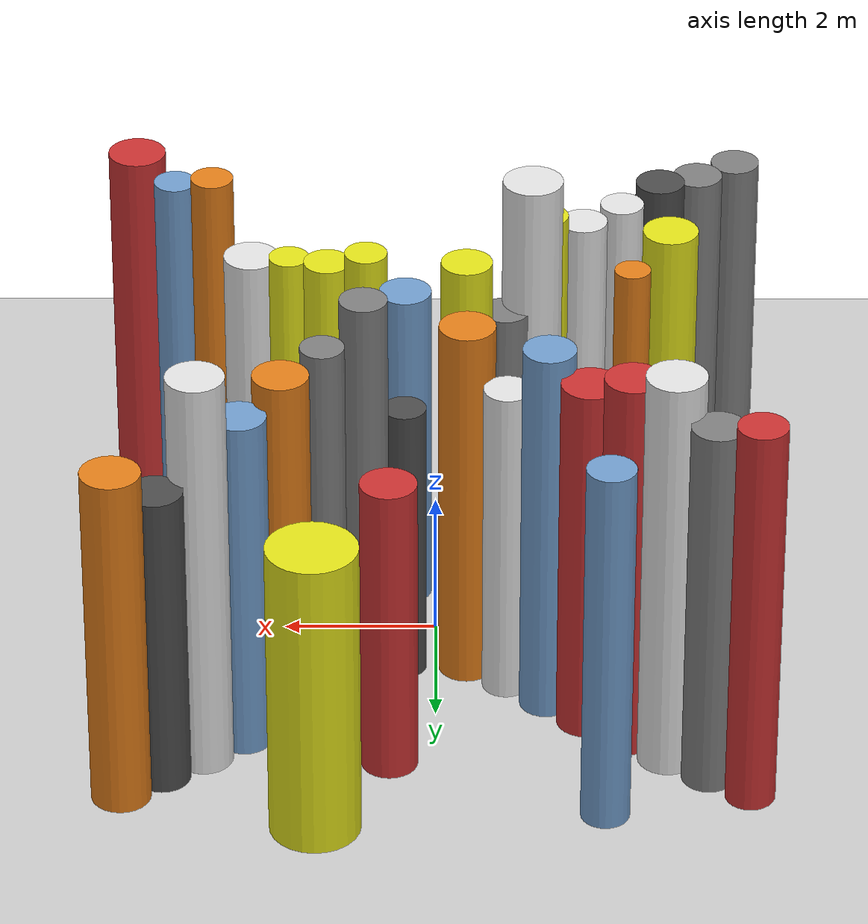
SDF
<?xml version='1.0'?>
<sdf version='1.6'>
  <world name='routeA_rl_v1__dense_recovery__rl_test__bottleneck_corridor__000111'>
    <!-- Sun light -->
    <light name='sun' type='directional'>
      <cast_shadows>1</cast_shadows>
      <pose>0 0 10 0 0 0</pose>
      <diffuse>0.8 0.8 0.8 1</diffuse>
      <specular>0.2 0.2 0.2 1</specular>
      <attenuation>
        <range>1000</range>
        <constant>0.9</constant>
        <linear>0.01</linear>
        <quadratic>0.001</quadratic>
      </attenuation>
      <direction>-0.5 0.1 -0.9</direction>
    </light>

    <!-- Ground plane -->
    <model name='ground_plane'>
      <static>1</static>
      <link name='link'>
        <collision name='collision'>
          <geometry>
            <plane>
              <normal>0 0 1</normal>
              <size>100 100</size>
            </plane>
          </geometry>
          <surface>
            <contact>
              <collide_bitmask>65535</collide_bitmask>
              <ode/>
            </contact>
            <friction>
              <ode>
                <mu>100</mu>
                <mu2>50</mu2>
              </ode>
              <torsional><ode/></torsional>
            </friction>
            <bounce/>
          </surface>
          <max_contacts>10</max_contacts>
        </collision>
        <visual name='visual'>
          <cast_shadows>0</cast_shadows>
          <geometry>
            <plane>
              <normal>0 0 1</normal>
              <size>100 100</size>
            </plane>
          </geometry>
          <material>
            <script>
              <uri>file://media/materials/scripts/gazebo.material</uri>
              <n>Gazebo/Grey</n>
            </script>
          </material>
        </visual>
      </link>
    </model>

    <!-- Environment -->
    <magnetic_field>6e-06 2.3e-05 -4.2e-05</magnetic_field>
    <atmosphere type='adiabatic'/>
    <physics name='default_physics' default='0' type='ode'>
      <gravity>0 0 -9.8</gravity>
      <max_step_size>0.004</max_step_size>
      <real_time_factor>1</real_time_factor>
      <real_time_update_rate>250</real_time_update_rate>
    </physics>
    <scene>
      <ambient>0.4 0.4 0.4 1</ambient>
      <background>0.7 0.7 0.7 1</background>
      <shadows>1</shadows>
    </scene>
    <wind/>
    <spherical_coordinates>
      <surface_model>EARTH_WGS84</surface_model>
      <latitude_deg>0</latitude_deg>
      <longitude_deg>0</longitude_deg>
      <elevation>0</elevation>
      <heading_deg>0</heading_deg>
    </spherical_coordinates>

    <!-- ============ OBSTACLES (40) ============ -->
    <model name='funnel_l_0'>
      <static>1</static>
      <link name='link'>
        <visual name='visual'>
          <geometry>
            <cylinder>
              <radius>0.3208</radius>
              <length>4.9427</length>
            </cylinder>
          </geometry>
          <material>
            <script>
              <n>Gazebo/Grey</n>
              <uri>file://media/materials/scripts/gazebo.material</uri>
            </script>
            <ambient>0.5 0.5 0.5 1</ambient>
          </material>
        </visual>
        <collision name='collision'>
          <geometry>
            <cylinder>
              <radius>0.3208</radius>
              <length>4.9427</length>
            </cylinder>
          </geometry>
          <max_contacts>10</max_contacts>
          <surface>
            <contact><ode/></contact>
            <bounce/>
            <friction>
              <ode><mu>1</mu><mu2>1</mu2></ode>
              <torsional><ode/></torsional>
            </friction>
          </surface>
        </collision>
      </link>
      <pose>-4.0000 -3.8000 2.4713 0 0 0.0000</pose>
    </model>

    <model name='funnel_r_0'>
      <static>1</static>
      <link name='link'>
        <visual name='visual'>
          <geometry>
            <cylinder>
              <radius>0.3223</radius>
              <length>5.5609</length>
            </cylinder>
          </geometry>
          <material>
            <script>
              <n>Gazebo/Red</n>
              <uri>file://media/materials/scripts/gazebo.material</uri>
            </script>
            <ambient>0.8 0.2 0.2 1</ambient>
          </material>
        </visual>
        <collision name='collision'>
          <geometry>
            <cylinder>
              <radius>0.3223</radius>
              <length>5.5609</length>
            </cylinder>
          </geometry>
          <max_contacts>10</max_contacts>
          <surface>
            <contact><ode/></contact>
            <bounce/>
            <friction>
              <ode><mu>1</mu><mu2>1</mu2></ode>
              <torsional><ode/></torsional>
            </friction>
          </surface>
        </collision>
      </link>
      <pose>-4.0000 3.8000 2.7805 0 0 0.0000</pose>
    </model>

    <model name='funnel_l_1'>
      <static>1</static>
      <link name='link'>
        <visual name='visual'>
          <geometry>
            <cylinder>
              <radius>0.3257</radius>
              <length>4.9757</length>
            </cylinder>
          </geometry>
          <material>
            <script>
              <n>Gazebo/Grey</n>
              <uri>file://media/materials/scripts/gazebo.material</uri>
            </script>
            <ambient>0.5 0.5 0.5 1</ambient>
          </material>
        </visual>
        <collision name='collision'>
          <geometry>
            <cylinder>
              <radius>0.3257</radius>
              <length>4.9757</length>
            </cylinder>
          </geometry>
          <max_contacts>10</max_contacts>
          <surface>
            <contact><ode/></contact>
            <bounce/>
            <friction>
              <ode><mu>1</mu><mu2>1</mu2></ode>
              <torsional><ode/></torsional>
            </friction>
          </surface>
        </collision>
      </link>
      <pose>-3.4857 -3.3857 2.4878 0 0 0.0000</pose>
    </model>

    <model name='funnel_r_1'>
      <static>1</static>
      <link name='link'>
        <visual name='visual'>
          <geometry>
            <cylinder>
              <radius>0.3495</radius>
              <length>5.2922</length>
            </cylinder>
          </geometry>
          <material>
            <script>
              <n>Gazebo/Grey</n>
              <uri>file://media/materials/scripts/gazebo.material</uri>
            </script>
            <ambient>0.5 0.5 0.5 1</ambient>
          </material>
        </visual>
        <collision name='collision'>
          <geometry>
            <cylinder>
              <radius>0.3495</radius>
              <length>5.2922</length>
            </cylinder>
          </geometry>
          <max_contacts>10</max_contacts>
          <surface>
            <contact><ode/></contact>
            <bounce/>
            <friction>
              <ode><mu>1</mu><mu2>1</mu2></ode>
              <torsional><ode/></torsional>
            </friction>
          </surface>
        </collision>
      </link>
      <pose>-3.4857 3.3857 2.6461 0 0 0.0000</pose>
    </model>

    <model name='funnel_l_2'>
      <static>1</static>
      <link name='link'>
        <visual name='visual'>
          <geometry>
            <cylinder>
              <radius>0.3228</radius>
              <length>5.1113</length>
            </cylinder>
          </geometry>
          <material>
            <script>
              <n>Gazebo/DarkGrey</n>
              <uri>file://media/materials/scripts/gazebo.material</uri>
            </script>
            <ambient>0.3 0.3 0.3 1</ambient>
          </material>
        </visual>
        <collision name='collision'>
          <geometry>
            <cylinder>
              <radius>0.3228</radius>
              <length>5.1113</length>
            </cylinder>
          </geometry>
          <max_contacts>10</max_contacts>
          <surface>
            <contact><ode/></contact>
            <bounce/>
            <friction>
              <ode><mu>1</mu><mu2>1</mu2></ode>
              <torsional><ode/></torsional>
            </friction>
          </surface>
        </collision>
      </link>
      <pose>-2.9714 -2.9714 2.5556 0 0 0.0000</pose>
    </model>

    <model name='funnel_r_2'>
      <static>1</static>
      <link name='link'>
        <visual name='visual'>
          <geometry>
            <cylinder>
              <radius>0.3881</radius>
              <length>5.7651</length>
            </cylinder>
          </geometry>
          <material>
            <script>
              <n>Gazebo/White</n>
              <uri>file://media/materials/scripts/gazebo.material</uri>
            </script>
            <ambient>0.9 0.9 0.9 1</ambient>
          </material>
        </visual>
        <collision name='collision'>
          <geometry>
            <cylinder>
              <radius>0.3881</radius>
              <length>5.7651</length>
            </cylinder>
          </geometry>
          <max_contacts>10</max_contacts>
          <surface>
            <contact><ode/></contact>
            <bounce/>
            <friction>
              <ode><mu>1</mu><mu2>1</mu2></ode>
              <torsional><ode/></torsional>
            </friction>
          </surface>
        </collision>
      </link>
      <pose>-2.9714 2.9714 2.8826 0 0 0.0000</pose>
    </model>

    <model name='funnel_l_3'>
      <static>1</static>
      <link name='link'>
        <visual name='visual'>
          <geometry>
            <cylinder>
              <radius>0.2877</radius>
              <length>5.0155</length>
            </cylinder>
          </geometry>
          <material>
            <script>
              <n>Gazebo/White</n>
              <uri>file://media/materials/scripts/gazebo.material</uri>
            </script>
            <ambient>0.9 0.9 0.9 1</ambient>
          </material>
        </visual>
        <collision name='collision'>
          <geometry>
            <cylinder>
              <radius>0.2877</radius>
              <length>5.0155</length>
            </cylinder>
          </geometry>
          <max_contacts>10</max_contacts>
          <surface>
            <contact><ode/></contact>
            <bounce/>
            <friction>
              <ode><mu>1</mu><mu2>1</mu2></ode>
              <torsional><ode/></torsional>
            </friction>
          </surface>
        </collision>
      </link>
      <pose>-2.4571 -2.5571 2.5078 0 0 0.0000</pose>
    </model>

    <model name='funnel_r_3'>
      <static>1</static>
      <link name='link'>
        <visual name='visual'>
          <geometry>
            <cylinder>
              <radius>0.3695</radius>
              <length>5.4804</length>
            </cylinder>
          </geometry>
          <material>
            <script>
              <n>Gazebo/Red</n>
              <uri>file://media/materials/scripts/gazebo.material</uri>
            </script>
            <ambient>0.8 0.2 0.2 1</ambient>
          </material>
        </visual>
        <collision name='collision'>
          <geometry>
            <cylinder>
              <radius>0.3695</radius>
              <length>5.4804</length>
            </cylinder>
          </geometry>
          <max_contacts>10</max_contacts>
          <surface>
            <contact><ode/></contact>
            <bounce/>
            <friction>
              <ode><mu>1</mu><mu2>1</mu2></ode>
              <torsional><ode/></torsional>
            </friction>
          </surface>
        </collision>
      </link>
      <pose>-2.4571 2.5571 2.7402 0 0 0.0000</pose>
    </model>

    <model name='funnel_l_4'>
      <static>1</static>
      <link name='link'>
        <visual name='visual'>
          <geometry>
            <cylinder>
              <radius>0.3103</radius>
              <length>4.9949</length>
            </cylinder>
          </geometry>
          <material>
            <script>
              <n>Gazebo/White</n>
              <uri>file://media/materials/scripts/gazebo.material</uri>
            </script>
            <ambient>0.9 0.9 0.9 1</ambient>
          </material>
        </visual>
        <collision name='collision'>
          <geometry>
            <cylinder>
              <radius>0.3103</radius>
              <length>4.9949</length>
            </cylinder>
          </geometry>
          <max_contacts>10</max_contacts>
          <surface>
            <contact><ode/></contact>
            <bounce/>
            <friction>
              <ode><mu>1</mu><mu2>1</mu2></ode>
              <torsional><ode/></torsional>
            </friction>
          </surface>
        </collision>
      </link>
      <pose>-1.9429 -2.1429 2.4975 0 0 0.0000</pose>
    </model>

    <model name='funnel_r_4'>
      <static>1</static>
      <link name='link'>
        <visual name='visual'>
          <geometry>
            <cylinder>
              <radius>0.3833</radius>
              <length>5.1409</length>
            </cylinder>
          </geometry>
          <material>
            <script>
              <n>Gazebo/Red</n>
              <uri>file://media/materials/scripts/gazebo.material</uri>
            </script>
            <ambient>0.8 0.2 0.2 1</ambient>
          </material>
        </visual>
        <collision name='collision'>
          <geometry>
            <cylinder>
              <radius>0.3833</radius>
              <length>5.1409</length>
            </cylinder>
          </geometry>
          <max_contacts>10</max_contacts>
          <surface>
            <contact><ode/></contact>
            <bounce/>
            <friction>
              <ode><mu>1</mu><mu2>1</mu2></ode>
              <torsional><ode/></torsional>
            </friction>
          </surface>
        </collision>
      </link>
      <pose>-1.9429 2.1429 2.5705 0 0 0.0000</pose>
    </model>

    <model name='funnel_l_5'>
      <static>1</static>
      <link name='link'>
        <visual name='visual'>
          <geometry>
            <cylinder>
              <radius>0.3035</radius>
              <length>5.3182</length>
            </cylinder>
          </geometry>
          <material>
            <script>
              <n>Gazebo/Yellow</n>
              <uri>file://media/materials/scripts/gazebo.material</uri>
            </script>
            <ambient>0.9 0.9 0.1 1</ambient>
          </material>
        </visual>
        <collision name='collision'>
          <geometry>
            <cylinder>
              <radius>0.3035</radius>
              <length>5.3182</length>
            </cylinder>
          </geometry>
          <max_contacts>10</max_contacts>
          <surface>
            <contact><ode/></contact>
            <bounce/>
            <friction>
              <ode><mu>1</mu><mu2>1</mu2></ode>
              <torsional><ode/></torsional>
            </friction>
          </surface>
        </collision>
      </link>
      <pose>-1.4286 -1.7286 2.6591 0 0 0.0000</pose>
    </model>

    <model name='funnel_r_5'>
      <static>1</static>
      <link name='link'>
        <visual name='visual'>
          <geometry>
            <cylinder>
              <radius>0.3435</radius>
              <length>5.3903</length>
            </cylinder>
          </geometry>
          <material>
            <script>
              <n>Gazebo/Blue</n>
              <uri>file://media/materials/scripts/gazebo.material</uri>
            </script>
            <ambient>0.447 0.624 0.812 1</ambient>
          </material>
        </visual>
        <collision name='collision'>
          <geometry>
            <cylinder>
              <radius>0.3435</radius>
              <length>5.3903</length>
            </cylinder>
          </geometry>
          <max_contacts>10</max_contacts>
          <surface>
            <contact><ode/></contact>
            <bounce/>
            <friction>
              <ode><mu>1</mu><mu2>1</mu2></ode>
              <torsional><ode/></torsional>
            </friction>
          </surface>
        </collision>
      </link>
      <pose>-1.4286 1.7286 2.6951 0 0 0.0000</pose>
    </model>

    <model name='funnel_l_6'>
      <static>1</static>
      <link name='link'>
        <visual name='visual'>
          <geometry>
            <cylinder>
              <radius>0.3198</radius>
              <length>4.1249</length>
            </cylinder>
          </geometry>
          <material>
            <script>
              <n>Gazebo/Grey</n>
              <uri>file://media/materials/scripts/gazebo.material</uri>
            </script>
            <ambient>0.5 0.5 0.5 1</ambient>
          </material>
        </visual>
        <collision name='collision'>
          <geometry>
            <cylinder>
              <radius>0.3198</radius>
              <length>4.1249</length>
            </cylinder>
          </geometry>
          <max_contacts>10</max_contacts>
          <surface>
            <contact><ode/></contact>
            <bounce/>
            <friction>
              <ode><mu>1</mu><mu2>1</mu2></ode>
              <torsional><ode/></torsional>
            </friction>
          </surface>
        </collision>
      </link>
      <pose>-0.9143 -1.3143 2.0625 0 0 0.0000</pose>
    </model>

    <model name='funnel_r_6'>
      <static>1</static>
      <link name='link'>
        <visual name='visual'>
          <geometry>
            <cylinder>
              <radius>0.3117</radius>
              <length>4.5480</length>
            </cylinder>
          </geometry>
          <material>
            <script>
              <n>Gazebo/White</n>
              <uri>file://media/materials/scripts/gazebo.material</uri>
            </script>
            <ambient>0.9 0.9 0.9 1</ambient>
          </material>
        </visual>
        <collision name='collision'>
          <geometry>
            <cylinder>
              <radius>0.3117</radius>
              <length>4.5480</length>
            </cylinder>
          </geometry>
          <max_contacts>10</max_contacts>
          <surface>
            <contact><ode/></contact>
            <bounce/>
            <friction>
              <ode><mu>1</mu><mu2>1</mu2></ode>
              <torsional><ode/></torsional>
            </friction>
          </surface>
        </collision>
      </link>
      <pose>-0.9143 1.3143 2.2740 0 0 0.0000</pose>
    </model>

    <model name='funnel_l_7'>
      <static>1</static>
      <link name='link'>
        <visual name='visual'>
          <geometry>
            <cylinder>
              <radius>0.3368</radius>
              <length>5.0999</length>
            </cylinder>
          </geometry>
          <material>
            <script>
              <n>Gazebo/Yellow</n>
              <uri>file://media/materials/scripts/gazebo.material</uri>
            </script>
            <ambient>0.9 0.9 0.1 1</ambient>
          </material>
        </visual>
        <collision name='collision'>
          <geometry>
            <cylinder>
              <radius>0.3368</radius>
              <length>5.0999</length>
            </cylinder>
          </geometry>
          <max_contacts>10</max_contacts>
          <surface>
            <contact><ode/></contact>
            <bounce/>
            <friction>
              <ode><mu>1</mu><mu2>1</mu2></ode>
              <torsional><ode/></torsional>
            </friction>
          </surface>
        </collision>
      </link>
      <pose>-0.4000 -0.9000 2.5500 0 0 0.0000</pose>
    </model>

    <model name='funnel_r_7'>
      <static>1</static>
      <link name='link'>
        <visual name='visual'>
          <geometry>
            <cylinder>
              <radius>0.3660</radius>
              <length>5.2265</length>
            </cylinder>
          </geometry>
          <material>
            <script>
              <n>Gazebo/Orange</n>
              <uri>file://media/materials/scripts/gazebo.material</uri>
            </script>
            <ambient>0.9 0.5 0.1 1</ambient>
          </material>
        </visual>
        <collision name='collision'>
          <geometry>
            <cylinder>
              <radius>0.3660</radius>
              <length>5.2265</length>
            </cylinder>
          </geometry>
          <max_contacts>10</max_contacts>
          <surface>
            <contact><ode/></contact>
            <bounce/>
            <friction>
              <ode><mu>1</mu><mu2>1</mu2></ode>
              <torsional><ode/></torsional>
            </friction>
          </surface>
        </collision>
      </link>
      <pose>-0.4000 0.9000 2.6132 0 0 0.0000</pose>
    </model>

    <model name='funnel_out_l_0'>
      <static>1</static>
      <link name='link'>
        <visual name='visual'>
          <geometry>
            <cylinder>
              <radius>0.3432</radius>
              <length>4.6619</length>
            </cylinder>
          </geometry>
          <material>
            <script>
              <n>Gazebo/Blue</n>
              <uri>file://media/materials/scripts/gazebo.material</uri>
            </script>
            <ambient>0.447 0.624 0.812 1</ambient>
          </material>
        </visual>
        <collision name='collision'>
          <geometry>
            <cylinder>
              <radius>0.3432</radius>
              <length>4.6619</length>
            </cylinder>
          </geometry>
          <max_contacts>10</max_contacts>
          <surface>
            <contact><ode/></contact>
            <bounce/>
            <friction>
              <ode><mu>1</mu><mu2>1</mu2></ode>
              <torsional><ode/></torsional>
            </friction>
          </surface>
        </collision>
      </link>
      <pose>0.4000 -0.9000 2.3310 0 0 0.0000</pose>
    </model>

    <model name='funnel_out_r_0'>
      <static>1</static>
      <link name='link'>
        <visual name='visual'>
          <geometry>
            <cylinder>
              <radius>0.2802</radius>
              <length>4.0031</length>
            </cylinder>
          </geometry>
          <material>
            <script>
              <n>Gazebo/DarkGrey</n>
              <uri>file://media/materials/scripts/gazebo.material</uri>
            </script>
            <ambient>0.3 0.3 0.3 1</ambient>
          </material>
        </visual>
        <collision name='collision'>
          <geometry>
            <cylinder>
              <radius>0.2802</radius>
              <length>4.0031</length>
            </cylinder>
          </geometry>
          <max_contacts>10</max_contacts>
          <surface>
            <contact><ode/></contact>
            <bounce/>
            <friction>
              <ode><mu>1</mu><mu2>1</mu2></ode>
              <torsional><ode/></torsional>
            </friction>
          </surface>
        </collision>
      </link>
      <pose>0.4000 0.9000 2.0015 0 0 0.0000</pose>
    </model>

    <model name='funnel_out_l_1'>
      <static>1</static>
      <link name='link'>
        <visual name='visual'>
          <geometry>
            <cylinder>
              <radius>0.2808</radius>
              <length>4.9953</length>
            </cylinder>
          </geometry>
          <material>
            <script>
              <n>Gazebo/Yellow</n>
              <uri>file://media/materials/scripts/gazebo.material</uri>
            </script>
            <ambient>0.9 0.9 0.1 1</ambient>
          </material>
        </visual>
        <collision name='collision'>
          <geometry>
            <cylinder>
              <radius>0.2808</radius>
              <length>4.9953</length>
            </cylinder>
          </geometry>
          <max_contacts>10</max_contacts>
          <surface>
            <contact><ode/></contact>
            <bounce/>
            <friction>
              <ode><mu>1</mu><mu2>1</mu2></ode>
              <torsional><ode/></torsional>
            </friction>
          </surface>
        </collision>
      </link>
      <pose>0.9143 -1.3143 2.4977 0 0 0.0000</pose>
    </model>

    <model name='funnel_out_r_1'>
      <static>1</static>
      <link name='link'>
        <visual name='visual'>
          <geometry>
            <cylinder>
              <radius>0.3089</radius>
              <length>5.8601</length>
            </cylinder>
          </geometry>
          <material>
            <script>
              <n>Gazebo/Grey</n>
              <uri>file://media/materials/scripts/gazebo.material</uri>
            </script>
            <ambient>0.5 0.5 0.5 1</ambient>
          </material>
        </visual>
        <collision name='collision'>
          <geometry>
            <cylinder>
              <radius>0.3089</radius>
              <length>5.8601</length>
            </cylinder>
          </geometry>
          <max_contacts>10</max_contacts>
          <surface>
            <contact><ode/></contact>
            <bounce/>
            <friction>
              <ode><mu>1</mu><mu2>1</mu2></ode>
              <torsional><ode/></torsional>
            </friction>
          </surface>
        </collision>
      </link>
      <pose>0.9143 1.3143 2.9301 0 0 0.0000</pose>
    </model>

    <model name='funnel_out_l_2'>
      <static>1</static>
      <link name='link'>
        <visual name='visual'>
          <geometry>
            <cylinder>
              <radius>0.3135</radius>
              <length>4.6188</length>
            </cylinder>
          </geometry>
          <material>
            <script>
              <n>Gazebo/Yellow</n>
              <uri>file://media/materials/scripts/gazebo.material</uri>
            </script>
            <ambient>0.9 0.9 0.1 1</ambient>
          </material>
        </visual>
        <collision name='collision'>
          <geometry>
            <cylinder>
              <radius>0.3135</radius>
              <length>4.6188</length>
            </cylinder>
          </geometry>
          <max_contacts>10</max_contacts>
          <surface>
            <contact><ode/></contact>
            <bounce/>
            <friction>
              <ode><mu>1</mu><mu2>1</mu2></ode>
              <torsional><ode/></torsional>
            </friction>
          </surface>
        </collision>
      </link>
      <pose>1.4286 -1.7286 2.3094 0 0 0.0000</pose>
    </model>

    <model name='funnel_out_r_2'>
      <static>1</static>
      <link name='link'>
        <visual name='visual'>
          <geometry>
            <cylinder>
              <radius>0.2848</radius>
              <length>5.4180</length>
            </cylinder>
          </geometry>
          <material>
            <script>
              <n>Gazebo/Grey</n>
              <uri>file://media/materials/scripts/gazebo.material</uri>
            </script>
            <ambient>0.5 0.5 0.5 1</ambient>
          </material>
        </visual>
        <collision name='collision'>
          <geometry>
            <cylinder>
              <radius>0.2848</radius>
              <length>5.4180</length>
            </cylinder>
          </geometry>
          <max_contacts>10</max_contacts>
          <surface>
            <contact><ode/></contact>
            <bounce/>
            <friction>
              <ode><mu>1</mu><mu2>1</mu2></ode>
              <torsional><ode/></torsional>
            </friction>
          </surface>
        </collision>
      </link>
      <pose>1.4286 1.7286 2.7090 0 0 0.0000</pose>
    </model>

    <model name='funnel_out_l_3'>
      <static>1</static>
      <link name='link'>
        <visual name='visual'>
          <geometry>
            <cylinder>
              <radius>0.2671</radius>
              <length>4.4470</length>
            </cylinder>
          </geometry>
          <material>
            <script>
              <n>Gazebo/Yellow</n>
              <uri>file://media/materials/scripts/gazebo.material</uri>
            </script>
            <ambient>0.9 0.9 0.1 1</ambient>
          </material>
        </visual>
        <collision name='collision'>
          <geometry>
            <cylinder>
              <radius>0.2671</radius>
              <length>4.4470</length>
            </cylinder>
          </geometry>
          <max_contacts>10</max_contacts>
          <surface>
            <contact><ode/></contact>
            <bounce/>
            <friction>
              <ode><mu>1</mu><mu2>1</mu2></ode>
              <torsional><ode/></torsional>
            </friction>
          </surface>
        </collision>
      </link>
      <pose>1.9429 -2.1429 2.2235 0 0 0.0000</pose>
    </model>

    <model name='funnel_out_r_3'>
      <static>1</static>
      <link name='link'>
        <visual name='visual'>
          <geometry>
            <cylinder>
              <radius>0.3634</radius>
              <length>5.2602</length>
            </cylinder>
          </geometry>
          <material>
            <script>
              <n>Gazebo/Orange</n>
              <uri>file://media/materials/scripts/gazebo.material</uri>
            </script>
            <ambient>0.9 0.5 0.1 1</ambient>
          </material>
        </visual>
        <collision name='collision'>
          <geometry>
            <cylinder>
              <radius>0.3634</radius>
              <length>5.2602</length>
            </cylinder>
          </geometry>
          <max_contacts>10</max_contacts>
          <surface>
            <contact><ode/></contact>
            <bounce/>
            <friction>
              <ode><mu>1</mu><mu2>1</mu2></ode>
              <torsional><ode/></torsional>
            </friction>
          </surface>
        </collision>
      </link>
      <pose>1.9429 2.1429 2.6301 0 0 0.0000</pose>
    </model>

    <model name='funnel_out_l_4'>
      <static>1</static>
      <link name='link'>
        <visual name='visual'>
          <geometry>
            <cylinder>
              <radius>0.3668</radius>
              <length>4.2156</length>
            </cylinder>
          </geometry>
          <material>
            <script>
              <n>Gazebo/White</n>
              <uri>file://media/materials/scripts/gazebo.material</uri>
            </script>
            <ambient>0.9 0.9 0.9 1</ambient>
          </material>
        </visual>
        <collision name='collision'>
          <geometry>
            <cylinder>
              <radius>0.3668</radius>
              <length>4.2156</length>
            </cylinder>
          </geometry>
          <max_contacts>10</max_contacts>
          <surface>
            <contact><ode/></contact>
            <bounce/>
            <friction>
              <ode><mu>1</mu><mu2>1</mu2></ode>
              <torsional><ode/></torsional>
            </friction>
          </surface>
        </collision>
      </link>
      <pose>2.4571 -2.5571 2.1078 0 0 0.0000</pose>
    </model>

    <model name='funnel_out_r_4'>
      <static>1</static>
      <link name='link'>
        <visual name='visual'>
          <geometry>
            <cylinder>
              <radius>0.3506</radius>
              <length>4.9178</length>
            </cylinder>
          </geometry>
          <material>
            <script>
              <n>Gazebo/Blue</n>
              <uri>file://media/materials/scripts/gazebo.material</uri>
            </script>
            <ambient>0.447 0.624 0.812 1</ambient>
          </material>
        </visual>
        <collision name='collision'>
          <geometry>
            <cylinder>
              <radius>0.3506</radius>
              <length>4.9178</length>
            </cylinder>
          </geometry>
          <max_contacts>10</max_contacts>
          <surface>
            <contact><ode/></contact>
            <bounce/>
            <friction>
              <ode><mu>1</mu><mu2>1</mu2></ode>
              <torsional><ode/></torsional>
            </friction>
          </surface>
        </collision>
      </link>
      <pose>2.4571 2.5571 2.4589 0 0 0.0000</pose>
    </model>

    <model name='funnel_out_l_5'>
      <static>1</static>
      <link name='link'>
        <visual name='visual'>
          <geometry>
            <cylinder>
              <radius>0.2828</radius>
              <length>5.1679</length>
            </cylinder>
          </geometry>
          <material>
            <script>
              <n>Gazebo/Orange</n>
              <uri>file://media/materials/scripts/gazebo.material</uri>
            </script>
            <ambient>0.9 0.5 0.1 1</ambient>
          </material>
        </visual>
        <collision name='collision'>
          <geometry>
            <cylinder>
              <radius>0.2828</radius>
              <length>5.1679</length>
            </cylinder>
          </geometry>
          <max_contacts>10</max_contacts>
          <surface>
            <contact><ode/></contact>
            <bounce/>
            <friction>
              <ode><mu>1</mu><mu2>1</mu2></ode>
              <torsional><ode/></torsional>
            </friction>
          </surface>
        </collision>
      </link>
      <pose>2.9714 -2.9714 2.5839 0 0 0.0000</pose>
    </model>

    <model name='funnel_out_r_5'>
      <static>1</static>
      <link name='link'>
        <visual name='visual'>
          <geometry>
            <cylinder>
              <radius>0.3778</radius>
              <length>5.7505</length>
            </cylinder>
          </geometry>
          <material>
            <script>
              <n>Gazebo/White</n>
              <uri>file://media/materials/scripts/gazebo.material</uri>
            </script>
            <ambient>0.9 0.9 0.9 1</ambient>
          </material>
        </visual>
        <collision name='collision'>
          <geometry>
            <cylinder>
              <radius>0.3778</radius>
              <length>5.7505</length>
            </cylinder>
          </geometry>
          <max_contacts>10</max_contacts>
          <surface>
            <contact><ode/></contact>
            <bounce/>
            <friction>
              <ode><mu>1</mu><mu2>1</mu2></ode>
              <torsional><ode/></torsional>
            </friction>
          </surface>
        </collision>
      </link>
      <pose>2.9714 2.9714 2.8752 0 0 0.0000</pose>
    </model>

    <model name='funnel_out_l_6'>
      <static>1</static>
      <link name='link'>
        <visual name='visual'>
          <geometry>
            <cylinder>
              <radius>0.2792</radius>
              <length>4.8766</length>
            </cylinder>
          </geometry>
          <material>
            <script>
              <n>Gazebo/Blue</n>
              <uri>file://media/materials/scripts/gazebo.material</uri>
            </script>
            <ambient>0.447 0.624 0.812 1</ambient>
          </material>
        </visual>
        <collision name='collision'>
          <geometry>
            <cylinder>
              <radius>0.2792</radius>
              <length>4.8766</length>
            </cylinder>
          </geometry>
          <max_contacts>10</max_contacts>
          <surface>
            <contact><ode/></contact>
            <bounce/>
            <friction>
              <ode><mu>1</mu><mu2>1</mu2></ode>
              <torsional><ode/></torsional>
            </friction>
          </surface>
        </collision>
      </link>
      <pose>3.4857 -3.3857 2.4383 0 0 0.0000</pose>
    </model>

    <model name='funnel_out_r_6'>
      <static>1</static>
      <link name='link'>
        <visual name='visual'>
          <geometry>
            <cylinder>
              <radius>0.3606</radius>
              <length>4.3399</length>
            </cylinder>
          </geometry>
          <material>
            <script>
              <n>Gazebo/DarkGrey</n>
              <uri>file://media/materials/scripts/gazebo.material</uri>
            </script>
            <ambient>0.3 0.3 0.3 1</ambient>
          </material>
        </visual>
        <collision name='collision'>
          <geometry>
            <cylinder>
              <radius>0.3606</radius>
              <length>4.3399</length>
            </cylinder>
          </geometry>
          <max_contacts>10</max_contacts>
          <surface>
            <contact><ode/></contact>
            <bounce/>
            <friction>
              <ode><mu>1</mu><mu2>1</mu2></ode>
              <torsional><ode/></torsional>
            </friction>
          </surface>
        </collision>
      </link>
      <pose>3.4857 3.3857 2.1700 0 0 0.0000</pose>
    </model>

    <model name='funnel_out_l_7'>
      <static>1</static>
      <link name='link'>
        <visual name='visual'>
          <geometry>
            <cylinder>
              <radius>0.3820</radius>
              <length>5.0870</length>
            </cylinder>
          </geometry>
          <material>
            <script>
              <n>Gazebo/Red</n>
              <uri>file://media/materials/scripts/gazebo.material</uri>
            </script>
            <ambient>0.8 0.2 0.2 1</ambient>
          </material>
        </visual>
        <collision name='collision'>
          <geometry>
            <cylinder>
              <radius>0.3820</radius>
              <length>5.0870</length>
            </cylinder>
          </geometry>
          <max_contacts>10</max_contacts>
          <surface>
            <contact><ode/></contact>
            <bounce/>
            <friction>
              <ode><mu>1</mu><mu2>1</mu2></ode>
              <torsional><ode/></torsional>
            </friction>
          </surface>
        </collision>
      </link>
      <pose>4.0000 -3.8000 2.5435 0 0 0.0000</pose>
    </model>

    <model name='funnel_out_r_7'>
      <static>1</static>
      <link name='link'>
        <visual name='visual'>
          <geometry>
            <cylinder>
              <radius>0.3865</radius>
              <length>4.8798</length>
            </cylinder>
          </geometry>
          <material>
            <script>
              <n>Gazebo/Orange</n>
              <uri>file://media/materials/scripts/gazebo.material</uri>
            </script>
            <ambient>0.9 0.5 0.1 1</ambient>
          </material>
        </visual>
        <collision name='collision'>
          <geometry>
            <cylinder>
              <radius>0.3865</radius>
              <length>4.8798</length>
            </cylinder>
          </geometry>
          <max_contacts>10</max_contacts>
          <surface>
            <contact><ode/></contact>
            <bounce/>
            <friction>
              <ode><mu>1</mu><mu2>1</mu2></ode>
              <torsional><ode/></torsional>
            </friction>
          </surface>
        </collision>
      </link>
      <pose>4.0000 3.8000 2.4399 0 0 0.0000</pose>
    </model>

    <model name='bn_scatter_0'>
      <static>1</static>
      <link name='link'>
        <visual name='visual'>
          <geometry>
            <cylinder>
              <radius>0.5872</radius>
              <length>4.2121</length>
            </cylinder>
          </geometry>
          <material>
            <script>
              <n>Gazebo/Yellow</n>
              <uri>file://media/materials/scripts/gazebo.material</uri>
            </script>
            <ambient>0.9 0.9 0.1 1</ambient>
          </material>
        </visual>
        <collision name='collision'>
          <geometry>
            <cylinder>
              <radius>0.5872</radius>
              <length>4.2121</length>
            </cylinder>
          </geometry>
          <max_contacts>10</max_contacts>
          <surface>
            <contact><ode/></contact>
            <bounce/>
            <friction>
              <ode><mu>1</mu><mu2>1</mu2></ode>
              <torsional><ode/></torsional>
            </friction>
          </surface>
        </collision>
      </link>
      <pose>1.5203 4.4576 2.1061 0 0 0.0000</pose>
    </model>

    <model name='bn_scatter_1'>
      <static>1</static>
      <link name='link'>
        <visual name='visual'>
          <geometry>
            <cylinder>
              <radius>0.3952</radius>
              <length>5.9319</length>
            </cylinder>
          </geometry>
          <material>
            <script>
              <n>Gazebo/White</n>
              <uri>file://media/materials/scripts/gazebo.material</uri>
            </script>
            <ambient>0.9 0.9 0.9 1</ambient>
          </material>
        </visual>
        <collision name='collision'>
          <geometry>
            <cylinder>
              <radius>0.3952</radius>
              <length>5.9319</length>
            </cylinder>
          </geometry>
          <max_contacts>10</max_contacts>
          <surface>
            <contact><ode/></contact>
            <bounce/>
            <friction>
              <ode><mu>1</mu><mu2>1</mu2></ode>
              <torsional><ode/></torsional>
            </friction>
          </surface>
        </collision>
      </link>
      <pose>-1.2605 -1.5596 2.9660 0 0 0.0000</pose>
    </model>

    <model name='bn_scatter_2'>
      <static>1</static>
      <link name='link'>
        <visual name='visual'>
          <geometry>
            <cylinder>
              <radius>0.2904</radius>
              <length>3.7080</length>
            </cylinder>
          </geometry>
          <material>
            <script>
              <n>Gazebo/DarkGrey</n>
              <uri>file://media/materials/scripts/gazebo.material</uri>
            </script>
            <ambient>0.3 0.3 0.3 1</ambient>
          </material>
        </visual>
        <collision name='collision'>
          <geometry>
            <cylinder>
              <radius>0.2904</radius>
              <length>3.7080</length>
            </cylinder>
          </geometry>
          <max_contacts>10</max_contacts>
          <surface>
            <contact><ode/></contact>
            <bounce/>
            <friction>
              <ode><mu>1</mu><mu2>1</mu2></ode>
              <torsional><ode/></torsional>
            </friction>
          </surface>
        </collision>
      </link>
      <pose>1.0011 1.0361 1.8540 0 0 0.0000</pose>
    </model>

    <model name='bn_scatter_3'>
      <static>1</static>
      <link name='link'>
        <visual name='visual'>
          <geometry>
            <cylinder>
              <radius>0.3620</radius>
              <length>5.3593</length>
            </cylinder>
          </geometry>
          <material>
            <script>
              <n>Gazebo/Yellow</n>
              <uri>file://media/materials/scripts/gazebo.material</uri>
            </script>
            <ambient>0.9 0.9 0.1 1</ambient>
          </material>
        </visual>
        <collision name='collision'>
          <geometry>
            <cylinder>
              <radius>0.3620</radius>
              <length>5.3593</length>
            </cylinder>
          </geometry>
          <max_contacts>10</max_contacts>
          <surface>
            <contact><ode/></contact>
            <bounce/>
            <friction>
              <ode><mu>1</mu><mu2>1</mu2></ode>
              <torsional><ode/></torsional>
            </friction>
          </surface>
        </collision>
      </link>
      <pose>-3.0473 -1.2655 2.6796 0 0 0.0000</pose>
    </model>

    <model name='bn_scatter_4'>
      <static>1</static>
      <link name='link'>
        <visual name='visual'>
          <geometry>
            <cylinder>
              <radius>0.3666</radius>
              <length>4.2544</length>
            </cylinder>
          </geometry>
          <material>
            <script>
              <n>Gazebo/Red</n>
              <uri>file://media/materials/scripts/gazebo.material</uri>
            </script>
            <ambient>0.8 0.2 0.2 1</ambient>
          </material>
        </visual>
        <collision name='collision'>
          <geometry>
            <cylinder>
              <radius>0.3666</radius>
              <length>4.2544</length>
            </cylinder>
          </geometry>
          <max_contacts>10</max_contacts>
          <surface>
            <contact><ode/></contact>
            <bounce/>
            <friction>
              <ode><mu>1</mu><mu2>1</mu2></ode>
              <torsional><ode/></torsional>
            </friction>
          </surface>
        </collision>
      </link>
      <pose>0.5913 3.0710 2.1272 0 0 0.0000</pose>
    </model>

    <model name='bn_scatter_5'>
      <static>1</static>
      <link name='link'>
        <visual name='visual'>
          <geometry>
            <cylinder>
              <radius>0.5900</radius>
              <length>3.0478</length>
            </cylinder>
          </geometry>
          <material>
            <script>
              <n>Gazebo/Grey</n>
              <uri>file://media/materials/scripts/gazebo.material</uri>
            </script>
            <ambient>0.5 0.5 0.5 1</ambient>
          </material>
        </visual>
        <collision name='collision'>
          <geometry>
            <cylinder>
              <radius>0.5900</radius>
              <length>3.0478</length>
            </cylinder>
          </geometry>
          <max_contacts>10</max_contacts>
          <surface>
            <contact><ode/></contact>
            <bounce/>
            <friction>
              <ode><mu>1</mu><mu2>1</mu2></ode>
              <torsional><ode/></torsional>
            </friction>
          </surface>
        </collision>
      </link>
      <pose>0.8674 -1.9311 1.5239 0 0 0.0000</pose>
    </model>

    <model name='bn_scatter_6'>
      <static>1</static>
      <link name='link'>
        <visual name='visual'>
          <geometry>
            <cylinder>
              <radius>0.2326</radius>
              <length>5.5419</length>
            </cylinder>
          </geometry>
          <material>
            <script>
              <n>Gazebo/Orange</n>
              <uri>file://media/materials/scripts/gazebo.material</uri>
            </script>
            <ambient>0.9 0.5 0.1 1</ambient>
          </material>
        </visual>
        <collision name='collision'>
          <geometry>
            <cylinder>
              <radius>0.2326</radius>
              <length>5.5419</length>
            </cylinder>
          </geometry>
          <max_contacts>10</max_contacts>
          <surface>
            <contact><ode/></contact>
            <bounce/>
            <friction>
              <ode><mu>1</mu><mu2>1</mu2></ode>
              <torsional><ode/></torsional>
            </friction>
          </surface>
        </collision>
      </link>
      <pose>-2.5125 0.0345 2.7709 0 0 0.0000</pose>
    </model>

    <model name='bn_scatter_7'>
      <static>1</static>
      <link name='link'>
        <visual name='visual'>
          <geometry>
            <cylinder>
              <radius>0.3158</radius>
              <length>5.1996</length>
            </cylinder>
          </geometry>
          <material>
            <script>
              <n>Gazebo/Blue</n>
              <uri>file://media/materials/scripts/gazebo.material</uri>
            </script>
            <ambient>0.447 0.624 0.812 1</ambient>
          </material>
        </visual>
        <collision name='collision'>
          <geometry>
            <cylinder>
              <radius>0.3158</radius>
              <length>5.1996</length>
            </cylinder>
          </geometry>
          <max_contacts>10</max_contacts>
          <surface>
            <contact><ode/></contact>
            <bounce/>
            <friction>
              <ode><mu>1</mu><mu2>1</mu2></ode>
              <torsional><ode/></torsional>
            </friction>
          </surface>
        </collision>
      </link>
      <pose>-2.1461 4.2014 2.5998 0 0 0.0000</pose>
    </model>

    <!-- GUI camera -->
    <gui fullscreen='0'>
      <camera name='user_camera'>
        <pose>-15 0 18 0 0.85 0.15</pose>
        <view_controller>orbit</view_controller>
        <projection_type>perspective</projection_type>
      </camera>
    </gui>
  </world>
</sdf>
